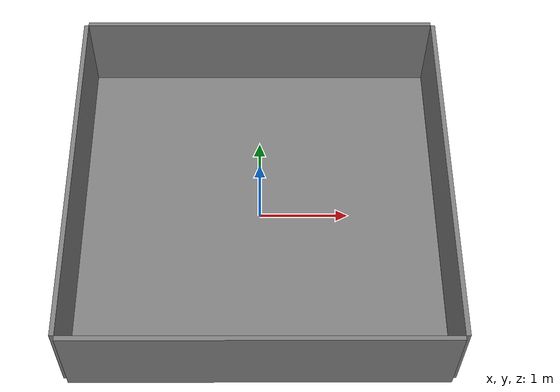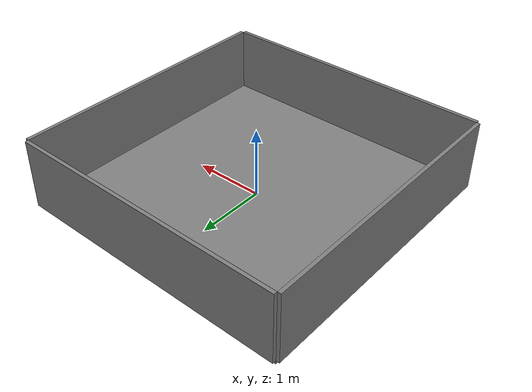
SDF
<?xml version="1.0" ?>
<sdf version="1.7">
  <world name="room_4x4_world">

    <!-- Floor -->
    <model name="floor">
      <static>true</static>
      <pose>0 0 0 0 0 0</pose>
      <link name="link">
        <collision name="collision">
          <geometry>
            <box>
              <size>4 4 0.1</size>
            </box>
          </geometry>
        </collision>
        <visual name="visual">
          <cast_shadows>true</cast_shadows>
          <geometry>
            <box>
              <size>4 4 0.1</size>
            </box>
          </geometry>
          <material>
            <ambient>0.5 0.5 0.5 1</ambient>
            <diffuse>0.5 0.5 0.5 1</diffuse>
          </material>
        </visual>
      </link>
    </model>

    <!-- Walls -->
    <model name="wall_x_plus">
      <static>true</static>
      <pose>2.025 0 0.5 0 0 0</pose>
      <link name="link">
        <collision name="col">
          <geometry><box><size>0.05 4 1</size></box></geometry>
        </collision>
        <visual name="vis">
          <cast_shadows>true</cast_shadows>
          <geometry><box><size>0.05 4 1</size></box></geometry>
          <material>
            <ambient>0.5 0.5 0.5 1</ambient>
            <diffuse>0.5 0.5 0.5 1</diffuse>
          </material>
        </visual>
      </link>
    </model>

    <model name="wall_x_minus">
      <static>true</static>
      <pose>-2.025 0 0.5 0 0 0</pose>
      <link name="link">
        <collision name="col">
          <geometry><box><size>0.05 4 1</size></box></geometry>
        </collision>
        <visual name="vis">
          <cast_shadows>true</cast_shadows>
          <geometry><box><size>0.05 4 1</size></box></geometry>
          <material>
            <ambient>0.5 0.5 0.5 1</ambient>
            <diffuse>0.5 0.5 0.5 1</diffuse>
          </material>
        </visual>
      </link>
    </model>

    <model name="wall_y_plus">
      <static>true</static>
      <pose>0 2.025 0.5 0 0 0</pose>
      <link name="link">
        <collision name="col">
          <geometry><box><size>4 0.05 1</size></box></geometry>
        </collision>
        <visual name="vis">
          <cast_shadows>true</cast_shadows>
          <geometry><box><size>4 0.05 1</size></box></geometry>
          <material>
            <ambient>0.5 0.5 0.5 1</ambient>
            <diffuse>0.5 0.5 0.5 1</diffuse>
          </material>
        </visual>
      </link>
    </model>

    <model name="wall_y_minus">
      <static>true</static>
      <pose>0 -2.025 0.5 0 0 0</pose>
      <link name="link">
        <collision name="col">
          <geometry><box><size>4 0.05 1</size></box></geometry>
        </collision>
        <visual name="vis">
          <cast_shadows>true</cast_shadows>
          <geometry><box><size>4 0.05 1</size></box></geometry>
          <material>
            <ambient>0.5 0.5 0.5 1</ambient>
            <diffuse>0.5 0.5 0.5 1</diffuse>
          </material>
        </visual>
      </link>
    </model>

    <!-- Sun - Directional light for realistic outdoor lighting with shadows -->
    <light name="sun" type="directional">
      <cast_shadows>true</cast_shadows>
      <pose>0 0 10 0 0 0</pose>
      <diffuse>1.0 1.0 1.0 1</diffuse>
      <specular>0.5 0.5 0.5 1</specular>
      <direction>-0.5 -0.3 -0.9</direction>
      <attenuation>
        <range>1000</range>
      </attenuation>
    </light>

    <!-- Ambient light for softer overall illumination -->
    <light name="ambient_light" type="point">
      <cast_shadows>false</cast_shadows>
      <pose>0 0 3 0 0 0</pose>
      <diffuse>0.4 0.4 0.4 1</diffuse>
      <specular>0.1 0.1 0.1 1</specular>
      <attenuation>
        <range>20</range>
        <constant>0.5</constant>
        <linear>0.01</linear>
        <quadratic>0.001</quadratic>
      </attenuation>
    </light>

    <!-- Physics settings for better simulation -->
    <physics name="1ms" type="ignored">
      <max_step_size>0.001</max_step_size>
      <real_time_factor>1.0</real_time_factor>
    </physics>

    <!-- Scene settings for better rendering -->
    <scene>
      <ambient>0.4 0.4 0.4 1</ambient>
      <background>0.7 0.8 1.0 1</background>
      <shadows>true</shadows>
    </scene>

  </world>
</sdf>
